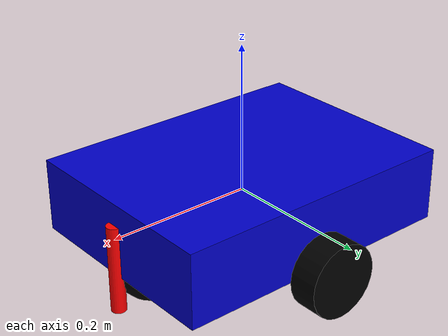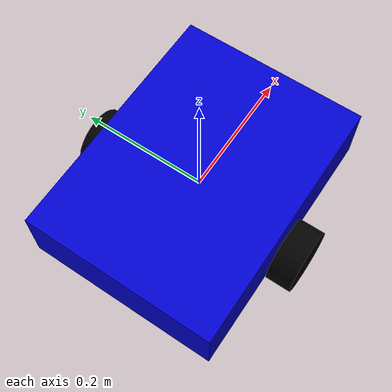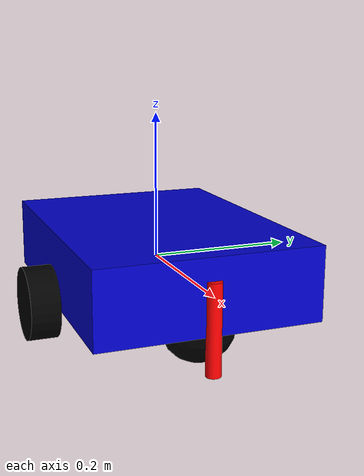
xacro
<?xml version="1.0"?>
<robot name="artbot" xmlns:xacro="http://www.ros.org/wiki/xacro">

  <xacro:arg name="ros2_control_yaml" default="$(find artbot_sim)/config/ros2_control.yaml"/>

  <material name="blue"><color rgba="0 0 0.8 1"/></material>
  <material name="black"><color rgba="0 0 0 1"/></material>
  <material name="red"><color rgba="1 0 0 1"/></material>

  <link name="base_link">
    <visual>
      <geometry><box size="0.4 0.3 0.1"/></geometry>
      <material name="blue"/>
    </visual>
    <collision>
      <geometry><box size="0.4 0.3 0.1"/></geometry>
    </collision>
    <inertial>
      <mass value="5.0"/>
      <inertia ixx="0.04" ixy="0.0" ixz="0.0" iyy="0.07" iyz="0.0" izz="0.09"/>
    </inertial>
  </link>

  <xacro:macro name="wheel" params="prefix side">
    <link name="${prefix}_wheel">
      <visual>
        <origin rpy="1.5707 0 0" xyz="0 0 0"/>
        <geometry><cylinder radius="0.05" length="0.04"/></geometry>
        <material name="black"/>
      </visual>
      <collision>
        <origin rpy="1.5707 0 0" xyz="0 0 0"/>
        <geometry><cylinder radius="0.05" length="0.04"/></geometry>
      </collision>
      <inertial>
        <mass value="0.5"/>
        <inertia ixx="0.0003" ixy="0" ixz="0" iyy="0.0003" iyz="0" izz="0.0006"/>
      </inertial>
    </link>
    <joint name="${prefix}_wheel_joint" type="continuous">
      <parent link="base_link"/>
      <child link="${prefix}_wheel"/>
      <origin rpy="0 0 0" xyz="0 ${side * 0.17} -0.05"/>
      <axis xyz="0 1 0"/>
    </joint>
  </xacro:macro>

  <xacro:wheel prefix="left" side="1"/>
  <xacro:wheel prefix="right" side="-1"/>

  <link name="front_caster">
    <visual><geometry><sphere radius="0.049"/></geometry><material name="black"/></visual>
    <collision><geometry><sphere radius="0.049"/></geometry></collision>
    <inertial><mass value="0.1"/><inertia ixx="0.0001" ixy="0" ixz="0" iyy="0.0001" iyz="0" izz="0.0001"/></inertial>
  </link>
  <joint name="front_caster_joint" type="fixed">
    <parent link="base_link"/>
    <child link="front_caster"/>
    <origin xyz="0.15 0 -0.05"/>
  </joint>

  <link name="rear_caster">
    <visual><geometry><sphere radius="0.049"/></geometry><material name="black"/></visual>
    <collision><geometry><sphere radius="0.049"/></geometry></collision>
    <inertial><mass value="0.1"/><inertia ixx="0.0001" ixy="0" ixz="0" iyy="0.0001" iyz="0" izz="0.0001"/></inertial>
  </link>
  <joint name="rear_caster_joint" type="fixed">
    <parent link="base_link"/>
    <child link="rear_caster"/>
    <origin xyz="-0.15 0 -0.05"/>
  </joint>

  <link name="pen_link">
    <visual>
      <geometry><cylinder radius="0.01" length="0.12"/></geometry>
      <material name="red"/>
    </visual>
  </link>
  <joint name="pen_joint" type="fixed">
    <parent link="base_link"/>
    <child link="pen_link"/>
    <origin xyz="0.2 0 -0.04"/>
  </joint>

  <ros2_control name="GazeboSystem" type="system">
    <hardware><plugin>gz_ros2_control/GazeboSimSystem</plugin></hardware>
    <joint name="left_wheel_joint">
      <command_interface name="velocity"/><state_interface name="velocity"/><state_interface name="position"/>
    </joint>
    <joint name="right_wheel_joint">
      <command_interface name="velocity"/><state_interface name="velocity"/><state_interface name="position"/>
    </joint>
  </ros2_control>

  <gazebo>
    <plugin filename="libgz_ros2_control-system.so" name="gz_ros2_control::GazeboSimROS2ControlPlugin">
      <parameters>$(arg ros2_control_yaml)</parameters>
    </plugin>
  </gazebo>
</robot>
